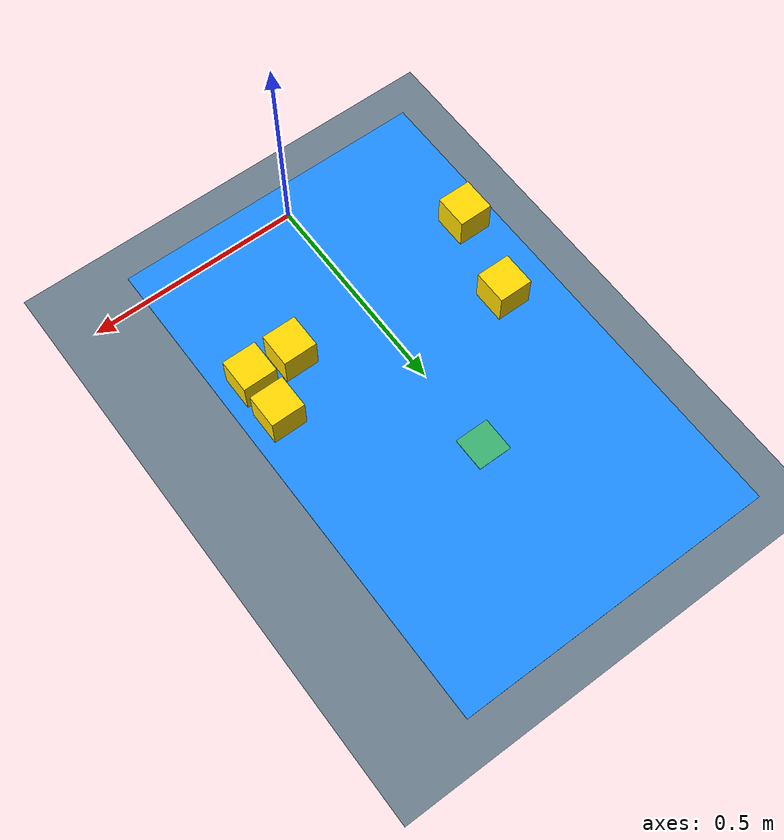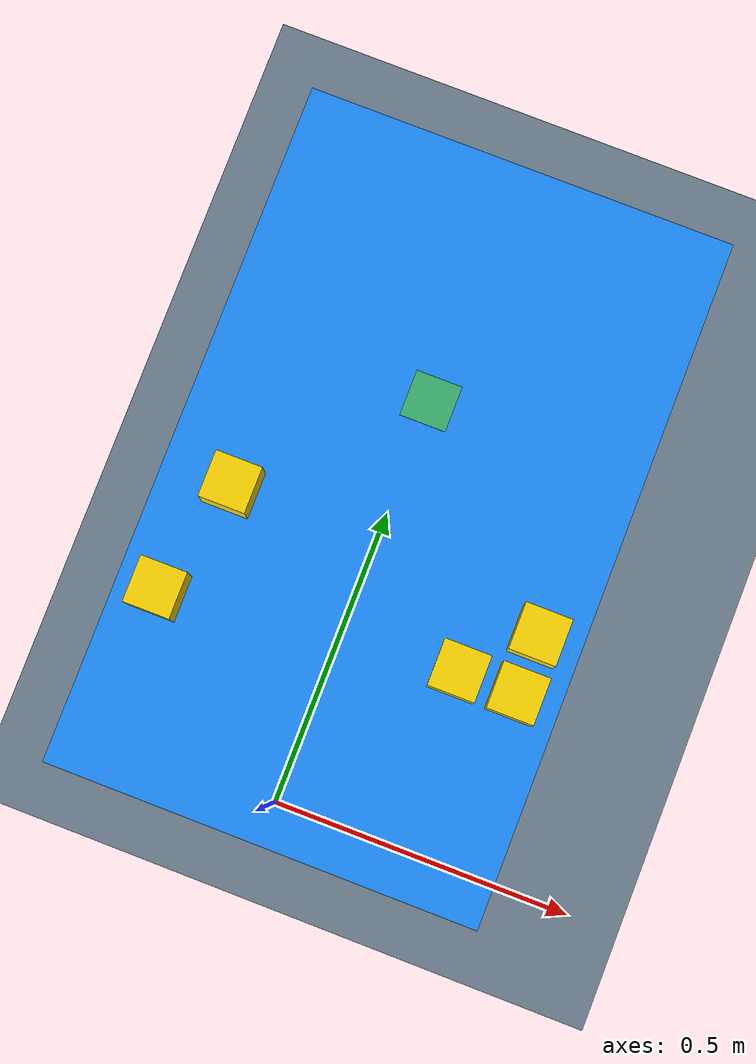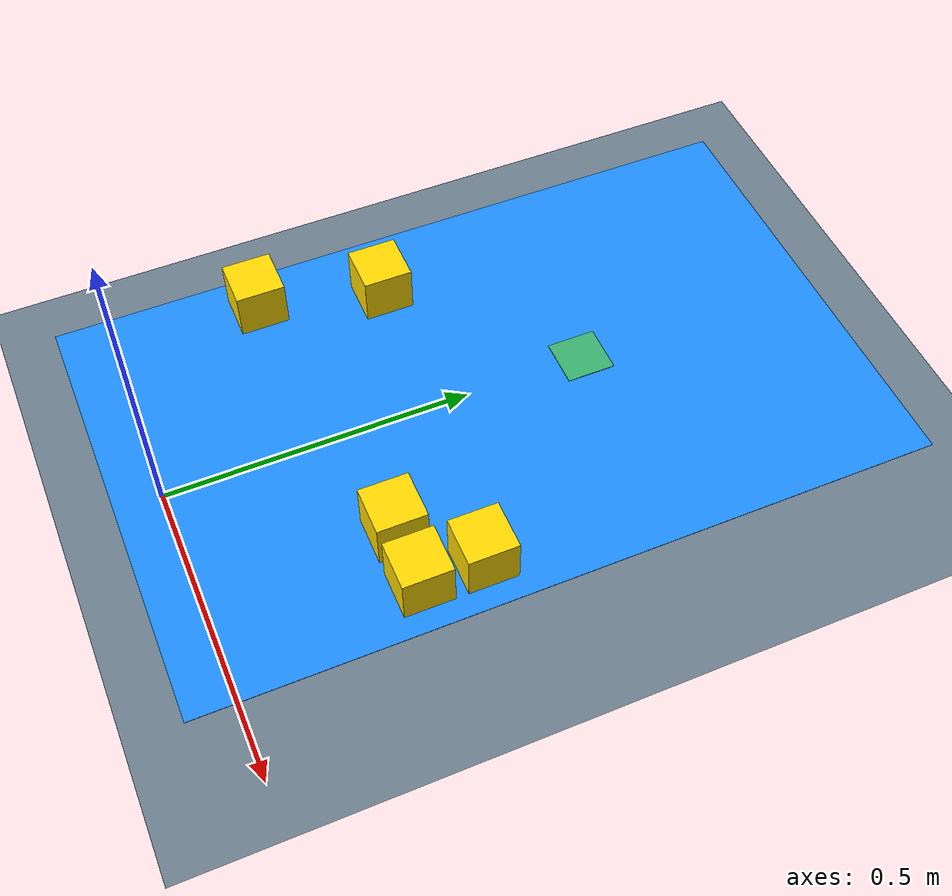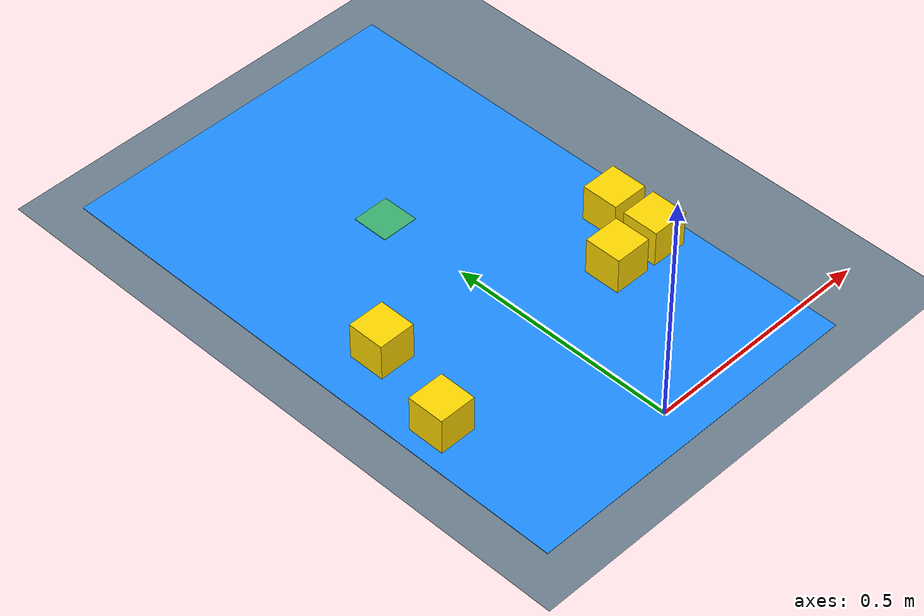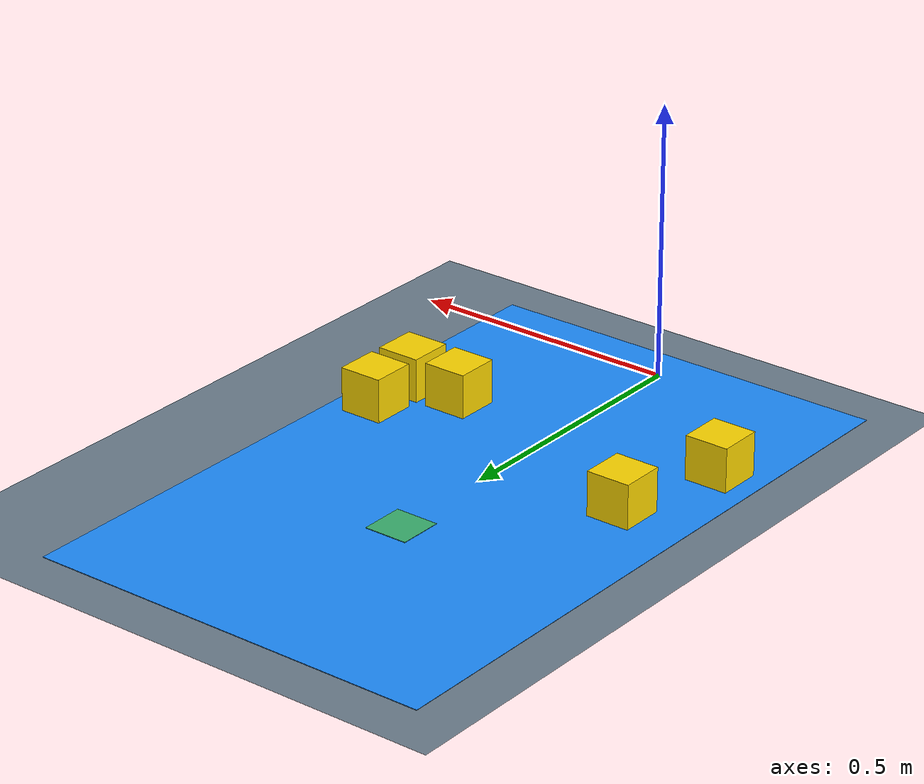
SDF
<sdf version='1.6'>
  <world name='default'>
    <plugin name="ros_link_attacher_plugin" filename="libgazebo_ros_link_attacher.so"/>

    <light name='sun' type='directional'>
      <cast_shadows>1</cast_shadows>
      <pose frame=''>0 0 10 0 -0 0</pose>
      <diffuse>0.8 0.8 0.8 1</diffuse>
      <specular>0.2 0.2 0.2 1</specular>
      <attenuation>
        <range>1000</range>
        <constant>0.9</constant>
        <linear>0.01</linear>
        <quadratic>0.001</quadratic>
      </attenuation>
      <direction>-0.5 0.1 -0.9</direction>
    </light>

    <model name='ground_plane'>
      <static>1</static>
      <link name='link'>
        <collision name='collision'>
          <geometry>
            <plane>
              <normal>0 0 1</normal>
              <size>100 100</size>
            </plane>
          </geometry>
          <surface>
            <contact>
              <collide_bitmask>65535</collide_bitmask>
              <ode/>
            </contact>
            <friction>
              <ode>
                <mu>100</mu>
                <mu2>50</mu2>
              </ode>
              <torsional>
                <ode/>
              </torsional>
            </friction>
            <bounce/>
          </surface>
          <max_contacts>10</max_contacts>
        </collision>
        <visual name='visual'>
          <cast_shadows>0</cast_shadows>
          <geometry>
            <plane>
              <normal>0 0 1</normal>
              <size>5 5</size>
            </plane>
          </geometry>
          <material>
            <lighting>1</lighting>
            <shader type='vertex'>
              <normal_map>__default__</normal_map>
            </shader>
            <ambient>0.43 0.5 0.56 1</ambient>
            <diffuse>0.43 0.5 0.56 1</diffuse>
            <specular>0.01 0.01 0.01 1</specular>
            <emissive>0 0 0 1</emissive>
          </material>
        </visual>
        <self_collide>0</self_collide>
        <enable_wind>0</enable_wind>
        <kinematic>0</kinematic>
      </link>
    </model>

    <gravity>0 0 -9.8</gravity>
    <magnetic_field>6e-06 2.3e-05 -4.2e-05</magnetic_field>
    <atmosphere type='adiabatic'/>
    <physics name='default_physics' default='0' type='ode'>
      <max_step_size>0.001</max_step_size>
      <real_time_factor>1</real_time_factor>
      <real_time_update_rate>1000</real_time_update_rate>
    </physics>
    <scene>
      <ambient>0.4 0.4 0.4 1</ambient>
      <background>0.7 0.7 0.7 1</background>
      <shadows>1</shadows>
    </scene>
    <audio>
      <device>default</device>
    </audio>
    <wind/>
    <spherical_coordinates>
      <surface_model>EARTH_WGS84</surface_model>
      <latitude_deg>0</latitude_deg>
      <longitude_deg>0</longitude_deg>
      <elevation>0</elevation>
      <heading_deg>0</heading_deg>
    </spherical_coordinates>

    <!-- The table top of the robot -->
    <model name='table'>
      <link name='link'>
        <inertial>
          <mass>1</mass>
          <inertia>
            <ixx>0.166667</ixx>
            <ixy>0</ixy>
            <ixz>0</ixz>
            <iyy>0.166667</iyy>
            <iyz>0</iyz>
            <izz>0.166667</izz>
          </inertia>
          <pose frame=''>0 0 0 0 -0 0</pose>
        </inertial>
        <pose frame=''>0 0 0 0 -0 0</pose>
        <gravity>1</gravity>
        <self_collide>0</self_collide>
        <kinematic>0</kinematic>
        <enable_wind>0</enable_wind>
        <visual name='visual'>
          <pose frame=''>0 0 0 0 -0 0</pose>
          <geometry>
            <box>
              <size>0.75 1.20 0.001</size>
            </box>
          </geometry>
          <material>
            <lighting>1</lighting>
            <shader type='vertex'>
              <normal_map>__default__</normal_map>
            </shader>
            <ambient>0.12 0.56 1 1</ambient>
            <diffuse>0.12 0.56 1 1</diffuse>
            <specular>0.01 0.01 0.01 1</specular>
            <emissive>0 0 0 1</emissive>
          </material>
          <transparency>0</transparency>
          <cast_shadows>1</cast_shadows>
        </visual>
        <collision name='collision'>
          <pose frame=''>0 0 0 0 -0 0</pose>
          <geometry>
            <box>
              <size>0.75 1.20 0.001</size>
            </box>
          </geometry>
        </collision>
      </link>
      <static>1</static>
      <allow_auto_disable>1</allow_auto_disable>
      <pose frame=''>0 0.525 0.0005 0 -0 0</pose>
    </model>

    <model name='goal'>
      <link name='link'>
        <inertial>
          <mass>1</mass>
          <inertia>
            <ixx>0.166667</ixx>
            <ixy>0</ixy>
            <ixz>0</ixz>
            <iyy>0.166667</iyy>
            <iyz>0</iyz>
            <izz>0.166667</izz>
          </inertia>
          <pose frame=''>0 0 0 0 -0 0</pose>
        </inertial>
        <self_collide>0</self_collide>
        <enable_wind>0</enable_wind>
        <kinematic>0</kinematic>
        <pose frame=''>0 0 0 0 -0 0</pose>
        <gravity>1</gravity>
        <visual name='visual'>
          <geometry>
            <box>
              <size>0.08 0.08 0.001</size>
            </box>
          </geometry>
          <material>
            <shader type='vertex'>
              <normal_map>__default__</normal_map>
            </shader>
            <ambient>0.23 0.7 0.44 1</ambient>
            <diffuse>0.23 0.7 0.44 1</diffuse>
            <specular>0.01 0.01 0.01 1</specular>
            <emissive>0 0 0 1</emissive>
          </material>
          <pose frame=''>0 0 0 0 -0 0</pose>
          <transparency>0</transparency>
          <cast_shadows>1</cast_shadows>
        </visual>
        <collision name='collision'>
          <pose frame=''>0 0 0 0 -0 0</pose>
          <geometry>
            <box>
              <size>0.08 0.08 0.001</size>
            </box>
          </geometry>
        </collision>
      </link>
      <static>0</static>
      <allow_auto_disable>1</allow_auto_disable>
      <pose frame=''>0.0 0.7 0.0015 0 -0 0</pose>
    </model>

    <model name='block_1'>
      <link name='link'>
        <inertial>
          <mass>1</mass>
          <inertia>
            <ixx>0.166667</ixx>
            <ixy>0</ixy>
            <ixz>0</ixz>
            <iyy>0.166667</iyy>
            <iyz>0</iyz>
            <izz>0.166667</izz>
          </inertia>
          <pose frame=''>0 0 0 0 -0 0</pose>
        </inertial>
        <self_collide>0</self_collide>
        <enable_wind>0</enable_wind>
        <kinematic>0</kinematic>
        <pose frame=''>0 0 0 0 -0 0</pose>
        <gravity>1</gravity>
        <visual name='visual'>
          <geometry>
            <box>
              <size>0.08 0.08 0.08</size>
            </box>
          </geometry>
          <material>
            <shader type='vertex'>
              <normal_map>__default__</normal_map>
            </shader>
            <ambient>1 0.85 0 1</ambient>
            <diffuse>1 0.85 0 1</diffuse>
            <specular>0.01 0.01 0.01 1</specular>
            <emissive>0 0 0 1</emissive>
          </material>
          <pose frame=''>0 0 0 0 -0 0</pose>
          <transparency>0</transparency>
          <cast_shadows>1</cast_shadows>
        </visual>
        <collision name='collision'>
          <pose frame=''>0 0 0 0 -0 0</pose>
          <geometry>
            <box>
              <size>0.08 0.08 0.08</size>
            </box>
          </geometry>
        </collision>
      </link>
      <static>0</static>
      <allow_auto_disable>1</allow_auto_disable>
      <pose frame=''>0.2 0.3 0.041 0 -0 0</pose>
    </model>

    <model name='block_2'>
      <link name='link'>
        <inertial>
          <mass>1</mass>
          <inertia>
            <ixx>0.166667</ixx>
            <ixy>0</ixy>
            <ixz>0</ixz>
            <iyy>0.166667</iyy>
            <iyz>0</iyz>
            <izz>0.166667</izz>
          </inertia>
          <pose frame=''>0 0 0 0 -0 0</pose>
        </inertial>
        <self_collide>0</self_collide>
        <enable_wind>0</enable_wind>
        <kinematic>0</kinematic>
        <pose frame=''>0 0 0 0 -0 0</pose>
        <gravity>1</gravity>
        <visual name='visual'>
          <geometry>
            <box>
              <size>0.08 0.08 0.08</size>
            </box>
          </geometry>
          <material>
            <shader type='vertex'>
              <normal_map>__default__</normal_map>
            </shader>
            <ambient>1 0.85 0 1</ambient>
            <diffuse>1 0.85 0 1</diffuse>
            <specular>0.01 0.01 0.01 1</specular>
            <emissive>0 0 0 1</emissive>
          </material>
          <pose frame=''>0 0 0 0 -0 0</pose>
          <transparency>0</transparency>
          <cast_shadows>1</cast_shadows>
        </visual>
        <collision name='collision'>
          <pose frame=''>0 0 0 0 -0 0</pose>
          <geometry>
            <box>
              <size>0.08 0.08 0.08</size>
            </box>
          </geometry>
        </collision>
      </link>
      <static>0</static>
      <allow_auto_disable>1</allow_auto_disable>
      <pose frame=''>0.30 0.3 0.041 0 -0 0</pose>
    </model>

    <model name='block_3'>
      <link name='link'>
        <inertial>
          <mass>1</mass>
          <inertia>
            <ixx>0.166667</ixx>
            <ixy>0</ixy>
            <ixz>0</ixz>
            <iyy>0.166667</iyy>
            <iyz>0</iyz>
            <izz>0.166667</izz>
          </inertia>
          <pose frame=''>0 0 0 0 -0 0</pose>
        </inertial>
        <self_collide>0</self_collide>
        <enable_wind>0</enable_wind>
        <kinematic>0</kinematic>
        <pose frame=''>0 0 0 0 -0 0</pose>
        <gravity>1</gravity>
        <visual name='visual'>
          <geometry>
            <box>
              <size>0.08 0.08 0.08</size>
            </box>
          </geometry>
          <material>
            <shader type='vertex'>
              <normal_map>__default__</normal_map>
            </shader>
            <ambient>1 0.85 0 1</ambient>
            <diffuse>1 0.85 0 1</diffuse>
            <specular>0.01 0.01 0.01 1</specular>
            <emissive>0 0 0 1</emissive>
          </material>
          <pose frame=''>0 0 0 0 -0 0</pose>
          <transparency>0</transparency>
          <cast_shadows>1</cast_shadows>
        </visual>
        <collision name='collision'>
          <pose frame=''>0 0 0 0 -0 0</pose>
          <geometry>
            <box>
              <size>0.08 0.08 0.08</size>
            </box>
          </geometry>
        </collision>
      </link>
      <static>0</static>
      <allow_auto_disable>1</allow_auto_disable>
      <pose frame=''>0.3 0.4 0.041 0 -0 0</pose>
    </model>

    <model name='block_4'>
      <link name='link'>
        <inertial>
          <mass>1</mass>
          <inertia>
            <ixx>0.166667</ixx>
            <ixy>0</ixy>
            <ixz>0</ixz>
            <iyy>0.166667</iyy>
            <iyz>0</iyz>
            <izz>0.166667</izz>
          </inertia>
          <pose frame=''>0 0 0 0 -0 0</pose>
        </inertial>
        <self_collide>0</self_collide>
        <enable_wind>0</enable_wind>
        <kinematic>0</kinematic>
        <pose frame=''>0 0 0 0 -0 0</pose>
        <gravity>1</gravity>
        <visual name='visual'>
          <geometry>
            <box>
              <size>0.08 0.08 0.08</size>
            </box>
          </geometry>
          <material>
            <shader type='vertex'>
              <normal_map>__default__</normal_map>
            </shader>
            <ambient>1 0.85 0 1</ambient>
            <diffuse>1 0.85 0 1</diffuse>
            <specular>0.01 0.01 0.01 1</specular>
            <emissive>0 0 0 1</emissive>
          </material>
          <pose frame=''>0 0 0 0 -0 0</pose>
          <transparency>0</transparency>
          <cast_shadows>1</cast_shadows>
        </visual>
        <collision name='collision'>
          <pose frame=''>0 0 0 0 -0 0</pose>
          <geometry>
            <box>
              <size>0.08 0.08 0.08</size>
            </box>
          </geometry>
        </collision>
      </link>
      <static>0</static>
      <allow_auto_disable>1</allow_auto_disable>
      <pose frame=''>-0.3 0.25 0.041 0 -0 0</pose>
    </model>

    <model name='block_5'>
      <link name='link'>
        <inertial>
          <mass>1</mass>
          <inertia>
            <ixx>0.166667</ixx>
            <ixy>0</ixy>
            <ixz>0</ixz>
            <iyy>0.166667</iyy>
            <iyz>0</iyz>
            <izz>0.166667</izz>
          </inertia>
          <pose frame=''>0 0 0 0 -0 0</pose>
        </inertial>
        <self_collide>0</self_collide>
        <enable_wind>0</enable_wind>
        <kinematic>0</kinematic>
        <pose frame=''>0 0 0 0 -0 0</pose>
        <gravity>1</gravity>
        <visual name='visual'>
          <geometry>
            <box>
              <size>0.08 0.08 0.08</size>
            </box>
          </geometry>
          <material>
            <shader type='vertex'>
              <normal_map>__default__</normal_map>
            </shader>
            <ambient>1 0.85 0 1</ambient>
            <diffuse>1 0.85 0 1</diffuse>
            <specular>0.01 0.01 0.01 1</specular>
            <emissive>0 0 0 1</emissive>
          </material>
          <pose frame=''>0 0 0 0 -0 0</pose>
          <transparency>0</transparency>
          <cast_shadows>1</cast_shadows>
        </visual>
        <collision name='collision'>
          <pose frame=''>0 0 0 0 -0 0</pose>
          <geometry>
            <box>
              <size>0.08 0.08 0.08</size>
            </box>
          </geometry>
        </collision>
      </link>
      <static>0</static>
      <allow_auto_disable>1</allow_auto_disable>
      <pose frame=''>-0.25 0.45 0.041 0 -0 0</pose>
    </model>

  </world>
</sdf>
